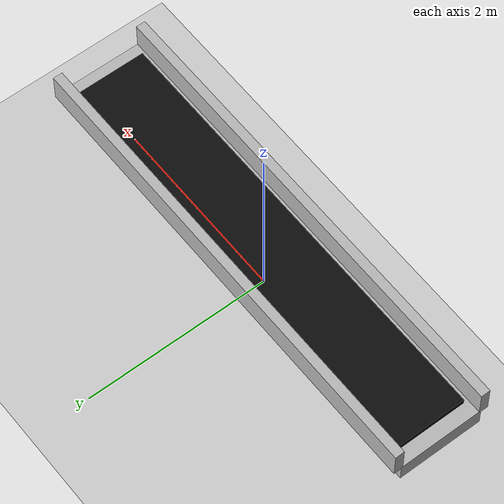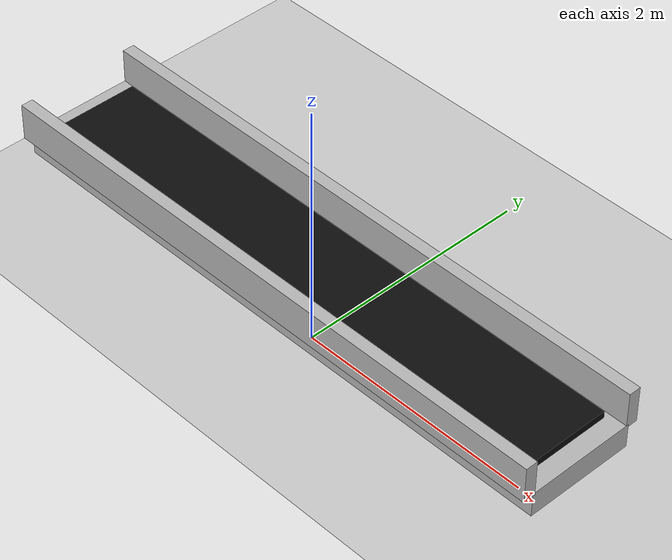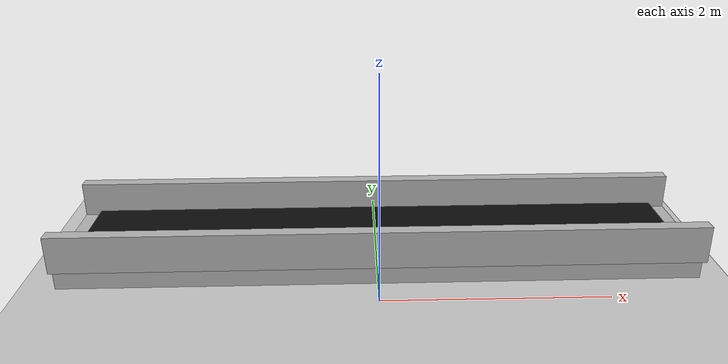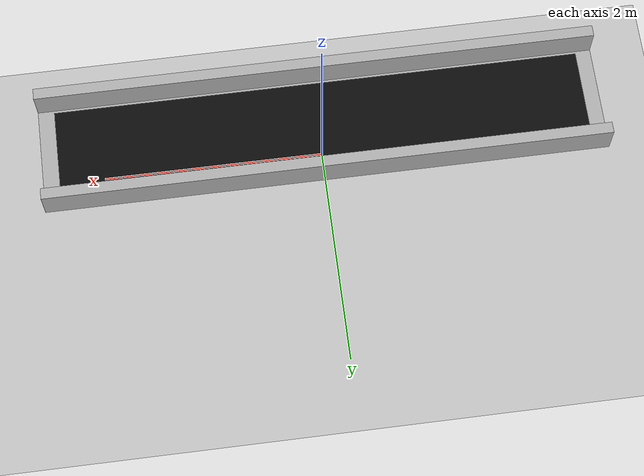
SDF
<?xml version="1.0"?>

<sdf version="1.10">

  <world name="four_robot_cell">

    <gravity>0 0 -9.81</gravity>

    <physics name="default_physics"
             type="ignored">

      <max_step_size>0.001</max_step_size>
      <real_time_factor>1.0</real_time_factor>
      <real_time_update_rate>1000</real_time_update_rate>

    </physics>

    <!-- Gazebo systems                                    -->

    <plugin
      filename="gz-sim-physics-system"
      name="gz::sim::systems::Physics"/>

    <plugin
      filename="gz-sim-user-commands-system"
      name="gz::sim::systems::UserCommands"/>

    <plugin
      filename="gz-sim-scene-broadcaster-system"
      name="gz::sim::systems::SceneBroadcaster"/>

    <!-- Ground                                             -->

    <model name="ground">

      <static>true</static>

      <link name="ground_link">

        <collision name="collision">
          <geometry>
            <plane/>
          </geometry>
        </collision>

        <visual name="visual">
          <geometry>
            <plane/>
          </geometry>
        </visual>

      </link>

    </model>

    <!-- Conveyor base                                      -->

    <model name="conveyor">

      <static>true</static>

      <pose>0 0 0 0 0 0</pose>

      <link name="conveyor_base">

        <collision name="collision">
          <pose>0 0 0.55 0 0 0</pose>
          <geometry>
            <box>
              <size>5.0 0.9 0.20</size>
            </box>
          </geometry>
        </collision>

        <visual name="visual">
          <pose>0 0 0.55 0 0 0</pose>
          <geometry>
            <box>
              <size>5.0 0.9 0.20</size>
            </box>
          </geometry>
        </visual>

        <!-- Belt surface -->

        <collision name="belt_collision">
          <pose>0 0 0.68 0 0 0</pose>
          <geometry>
            <box>
              <size>4.7 0.76 0.06</size>
            </box>
          </geometry>
        </collision>

        <visual name="belt_visual">
          <pose>0 0 0.68 0 0 0</pose>
          <geometry>
            <box>
              <size>4.7 0.76 0.06</size>
            </box>
          </geometry>

          <material>
            <ambient>0.02 0.02 0.02 1</ambient>
            <diffuse>0.05 0.05 0.05 1</diffuse>
          </material>

        </visual>

      </link>

      <!-- Side rail +Y -->

      <link name="left_rail">

        <pose>0 0.48 0.78 0 0 0</pose>

        <collision name="collision">
          <geometry>
            <box>
              <size>5.0 0.10 0.30</size>
            </box>
          </geometry>
        </collision>

        <visual name="visual">
          <geometry>
            <box>
              <size>5.0 0.10 0.30</size>
            </box>
          </geometry>
        </visual>

      </link>

      <!-- Side rail -Y -->

      <link name="right_rail">

        <pose>0 -0.48 0.78 0 0 0</pose>

        <collision name="collision">
          <geometry>
            <box>
              <size>5.0 0.10 0.30</size>
            </box>
          </geometry>
        </collision>

        <visual name="visual">
          <geometry>
            <box>
              <size>5.0 0.10 0.30</size>
            </box>
          </geometry>
        </visual>

      </link>

    </model>

    <!-- Lighting                                          -->

    <light name="sun"
           type="directional">

      <cast_shadows>true</cast_shadows>

      <pose>0 0 6 0 0 0</pose>

      <diffuse>0.8 0.8 0.8 1</diffuse>

      <specular>0.2 0.2 0.2 1</specular>

      <direction>-0.4 -0.3 -1</direction>

    </light>

  </world>

</sdf>
